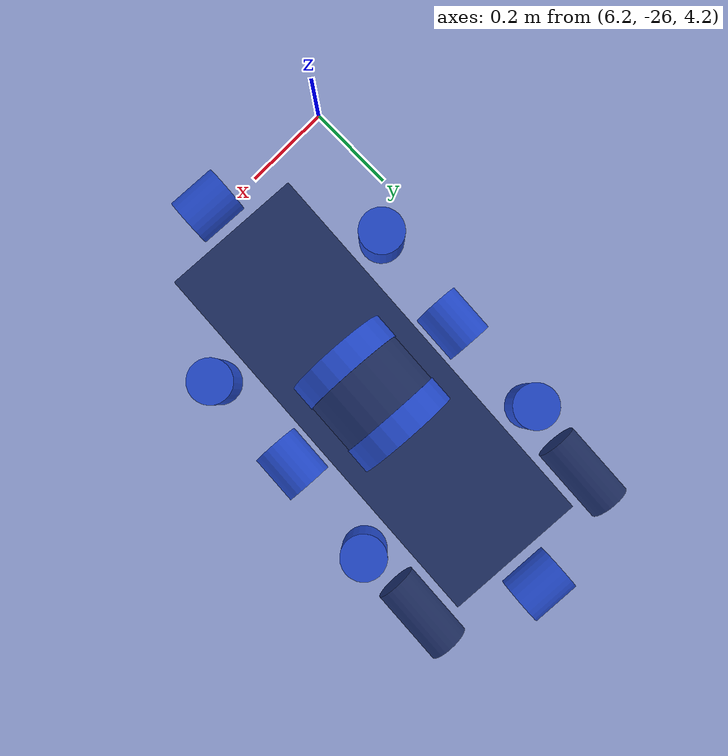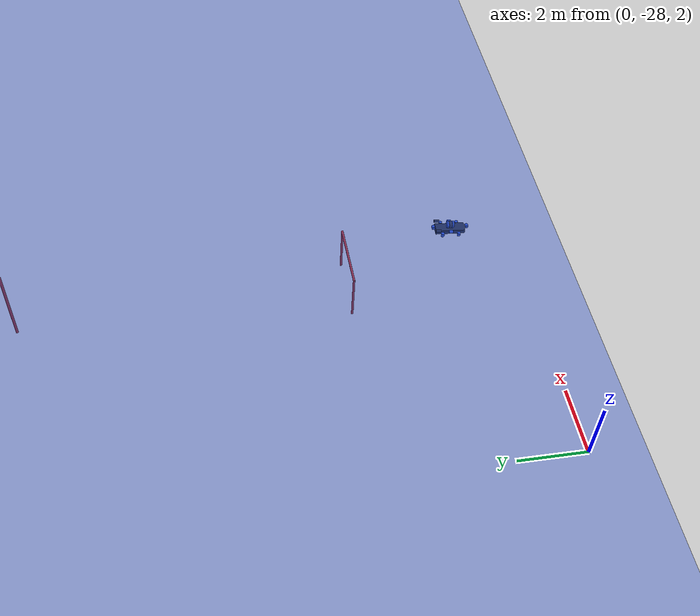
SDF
<sdf version="1.6">
 <world name="default">
  <scene>
   <ambient>0.25 0.3 1 1</ambient>
   <grid>0</grid>
   <background>0.25 0.3 1 1</background>
   <shadows>1</shadows>
  </scene>
  <light name="sun0" type="directional">
   <pose>8 -21 10 0 0.8 -2.8</pose>
   <diffuse>0.8 0.8 0.8 1</diffuse>
   <specular>0.2 0.2 0.2 1</specular>
   <attenuation>
    <range>1000</range>
    <constant>0.9</constant>
    <linear>0.01</linear>
    <quadratic>0.001</quadratic>
   </attenuation>
   <direction>-0.5 0.1 -0.9</direction>
  </light>
  <light name="sun1" type="directional">
   <pose>8 -20 10 0 0.8 0</pose>
   <diffuse>0.8 0.8 0.8 1</diffuse>
   <specular>0.2 0.2 0.2 1</specular>
   <attenuation>
    <range>1000</range>
    <constant>0.9</constant>
    <linear>0.01</linear>
    <quadratic>0.001</quadratic>
   </attenuation>
   <direction>-0.5 0.1 -0.9</direction>
  </light>
  <light name="sun2" type="directional">
   <pose>8 -19 10 0 -0 0</pose>
   <diffuse>0.8 0.8 0.8 1</diffuse>
   <specular>0.2 0.2 0.2 1</specular>
   <attenuation>
    <range>1000</range>
    <constant>0.9</constant>
    <linear>0.01</linear>
    <quadratic>0.001</quadratic>
   </attenuation>
   <direction>-0.5 0.1 -0.9</direction>
  </light>
  <light name="sun3" type="directional">
   <pose>8 -19 10 1.75 -0 0</pose>
   <diffuse>0.8 0.8 0.8 1</diffuse>
   <specular>0.2 0.2 0.2 1</specular>
   <attenuation>
    <range>1000</range>
    <constant>0.9</constant>
    <linear>0.01</linear>
    <quadratic>0.001</quadratic>
   </attenuation>
   <direction>-0.5 0.1 -0.9</direction>
  </light>
  <light name="sun4" type="directional">
   <pose>8 -19 10 1.75 -0 2.9</pose>
   <diffuse>0.8 0.8 0.8 1</diffuse>
   <specular>0.2 0.2 0.2 1</specular>
   <attenuation>
    <range>1000</range>
    <constant>0.9</constant>
    <linear>0.01</linear>
    <quadratic>0.001</quadratic>
   </attenuation>
   <direction>-0.5 0.1 -0.9</direction>
  </light>
  <model name="ceiling_plane">
   <static>1</static>
   <pose>1.72575 1.69101 4.78394 0 -0 0</pose>
   <link name="link">
    <visual name="visual">
     <cast_shadows>0</cast_shadows>
     <geometry><box><size>90 60 0.001</size></box></geometry>
     <material>
      <script><uri>file://media/materials/scripts/gazebo.material</uri><name>Gazebo/BlueTransparent</name></script>
     </material>
     <transparency>0.6</transparency>
    </visual>
   </link>
  </model>
  <model name="pinger_a">
   <static>1</static>
   <pose>37.88 -4.1 -4.9 0 -0 0</pose>
   <link name="link">
    <visual name="visual">
     <geometry><cylinder><radius>0.03</radius><length>0.15</length></cylinder></geometry>
     <material>
      <script><uri>file://media/materials/scripts/gazebo.material</uri><name>Gazebo/FlatBlack</name></script>
     </material>
    </visual>
   </link>
  </model>
  <model name="start gate_a">
   <pose>6.474 -22.48 2.17312 0 -0 1.575</pose>
   <static>1</static>
   <link name="board">
    <visual name="main"><geometry><mesh><uri>file://new_gate/gate1.dae</uri></mesh></geometry></visual>
    <collision name="main"><geometry><mesh><uri>file://new_gate/gate1.dae</uri></mesh></geometry></collision>
   </link>
  </model>
  <model name="pole">
   <pose>6.71645 -12.465 1.55 0 -0 1.575</pose>
   <static>1</static>
   <link name="board">
    <visual name="main"><geometry><mesh><uri>file://qualification_pole/Post1.dae</uri></mesh></geometry></visual>
    <collision name="main">
     <geometry><mesh><uri>file://qualification_pole/Post1.dae</uri></mesh></geometry>
    </collision>
   </link>
  </model>
  <model name="robosub">
   <pose>6.54663 -25.4801 4.40744 -0.000913 -0.017159 1.51179</pose>
   <joint name="hull_frame" type="fixed"><parent>frame</parent><child>hull</child></joint>
   <joint name="dive_front_left_frame" type="fixed"><parent>frame</parent><child>dive_front_left</child></joint>
   <joint name="dive_front_right_frame" type="fixed">
    <parent>frame</parent>
    <child>dive_front_right</child>
   </joint>
   <joint name="dive_back_left_frame" type="fixed"><parent>frame</parent><child>dive_back_left</child></joint>
   <joint name="dive_back_right_frame" type="fixed"><parent>frame</parent><child>dive_back_right</child></joint>
   <joint name="strafe_front_frame" type="fixed"><parent>frame</parent><child>strafe_front</child></joint>
   <joint name="strafe_back_frame" type="fixed"><parent>frame</parent><child>strafe_back</child></joint>
   <joint name="forward_left_frame" type="fixed"><parent>frame</parent><child>forward_left</child></joint>
   <joint name="forward_right_frame" type="fixed"><parent>frame</parent><child>forward_right</child></joint>
   <joint name="left_camera_frame" type="fixed"><parent>frame</parent><child>left_camera</child></joint>
   <joint name="right_camera_frame" type="fixed"><parent>frame</parent><child>right_camera</child></joint>
   <joint name="bottom_camera_frame" type="fixed"><parent>frame</parent><child>bottom_camera</child></joint>
   <joint name="hydrophone_h0_frame" type="fixed"><parent>frame</parent><child>hydrophone_h0</child></joint>
   <joint name="hydrophone_hx_frame" type="fixed"><parent>frame</parent><child>hydrophone_hx</child></joint>
   <joint name="hydrophone_hy_frame" type="fixed"><parent>frame</parent><child>hydrophone_hy</child></joint>
   <joint name="hydrophone_hz_frame" type="fixed"><parent>frame</parent><child>hydrophone_hz</child></joint>
   <link name="hull">
    <pose>0 0 0.082 1.5708 -0 1.5708</pose>
    <inertial>
     <mass>10</mass>
     <inertia><ixx>1</ixx><ixy>0</ixy><ixz>0</ixz><iyy>1</iyy><iyz>0</iyz><izz>1</izz></inertia>
    </inertial>
    <visual name="bulkhead_visual">
     <geometry><cylinder><radius>0.1</radius><length>0.13</length></cylinder></geometry>
     <material>
      <script><uri>file://media/materials/scripts/gazebo.material</uri><name>Gazebo/Black</name></script>
     </material>
    </visual>
    <visual name="front_ring_visual">
     <pose>0 0 0.075 0 -0 0</pose>
     <geometry><cylinder><radius>0.102</radius><length>0.05</length></cylinder></geometry>
     <material>
      <script><uri>file://media/materials/scripts/gazebo.material</uri><name>Gazebo/Blue</name></script>
     </material>
    </visual>
    <visual name="rear_ring_visual">
     <pose>0 0 -0.075 0 -0 0</pose>
     <geometry><cylinder><radius>0.102</radius><length>0.05</length></cylinder></geometry>
     <material>
      <script><uri>file://media/materials/scripts/gazebo.material</uri><name>Gazebo/Blue</name></script>
     </material>
    </visual>
    <visual name="front_tube_visual">
     <pose>0 0 0.235 0 -0 0</pose>
     <geometry><cylinder><radius>0.1</radius><length>0.32</length></cylinder></geometry>
     <material>
      <script><uri>file://media/materials/scripts/gazebo.material</uri><name>Gazebo/GreyTransparent</name></script>
      <diffuse>0.6 0.6 0.6 0.6</diffuse>
     </material>
    </visual>
    <visual name="rear_tube_visual">
     <pose>0 0 -0.235 0 -0 0</pose>
     <geometry><cylinder><radius>0.1</radius><length>0.32</length></cylinder></geometry>
     <material>
      <script><uri>file://media/materials/scripts/gazebo.material</uri><name>Gazebo/GreyTransparent</name></script>
      <diffuse>0.6 0.6 0.6 0.6</diffuse>
     </material>
    </visual>
    <collision name="hull_collision">
     <geometry><cylinder><radius>0.1</radius><length>0.77</length></cylinder></geometry>
    </collision>
    <velocity_decay><linear>0.002</linear><angular>0.002</angular></velocity_decay>
   </link>
   <link name="hydrophone_h0">
    <inertial>
     <mass>0.001</mass>
     <inertia><ixx>1</ixx><ixy>0</ixy><ixz>0</ixz><iyy>1</iyy><iyz>0</iyz><izz>1</izz></inertia>
    </inertial>
   </link>
   <link name="hydrophone_hx">
    <pose>0.015 0 0 0 -0 0</pose>
    <inertial>
     <mass>0.001</mass>
     <inertia><ixx>1</ixx><ixy>0</ixy><ixz>0</ixz><iyy>1</iyy><iyz>0</iyz><izz>1</izz></inertia>
    </inertial>
   </link>
   <link name="hydrophone_hy">
    <pose>0 0.015 0 0 -0 0</pose>
    <inertial>
     <mass>0.001</mass>
     <inertia><ixx>1</ixx><ixy>0</ixy><ixz>0</ixz><iyy>1</iyy><iyz>0</iyz><izz>1</izz></inertia>
    </inertial>
   </link>
   <link name="hydrophone_hz">
    <pose>0 0 0.015 0 -0 0</pose>
    <inertial>
     <mass>0.001</mass>
     <inertia><ixx>1</ixx><ixy>0</ixy><ixz>0</ixz><iyy>1</iyy><iyz>0</iyz><izz>1</izz></inertia>
    </inertial>
   </link>
   <link name="frame">
    <pose>0 0 -0.088 0 -0 0</pose>
    <inertial>
     <mass>16.5</mass>
     <inertia><ixx>1</ixx><ixy>0</ixy><ixz>0</ixz><iyy>1</iyy><iyz>0</iyz><izz>1</izz></inertia>
    </inertial>
    <visual name="frame_visual">
     <geometry><box><size>0.85 0.3 0.13</size></box></geometry>
     <material>
      <script><uri>file://media/materials/scripts/gazebo.material</uri><name>Gazebo/FlatBlack</name></script>
     </material>
    </visual>
    <collision name="frame_collision"><geometry><box><size>0.85 0.3 0.13</size></box></geometry></collision>
    <velocity_decay><linear>0.002</linear><angular>0.002</angular></velocity_decay>
   </link>
   <link name="dive_front_left">
    <pose>0.235 0.23 -0.1 3.14159 3e-06 3.14159</pose>
    <inertial>
     <mass>0.344</mass>
     <inertia><ixx>1</ixx><ixy>0</ixy><ixz>0</ixz><iyy>1</iyy><iyz>0</iyz><izz>1</izz></inertia>
    </inertial>
    <visual name="dive_front_left_visual">
     <geometry><cylinder><radius>0.0485</radius><length>0.101</length></cylinder></geometry>
     <material>
      <script><uri>file://media/materials/scripts/gazebo.material</uri><name>Gazebo/Blue</name></script>
     </material>
    </visual>
    <collision name="dive_front_left_collision">
     <geometry><cylinder><radius>0.0485</radius><length>0.101</length></cylinder></geometry>
    </collision>
   </link>
   <link name="dive_front_right">
    <pose>0.235 -0.23 -0.1 3.14159 3e-06 3.14159</pose>
    <inertial>
     <mass>0.344</mass>
     <inertia><ixx>1</ixx><ixy>0</ixy><ixz>0</ixz><iyy>1</iyy><iyz>0</iyz><izz>1</izz></inertia>
    </inertial>
    <visual name="dive_front_right_visual">
     <geometry><cylinder><radius>0.0485</radius><length>0.101</length></cylinder></geometry>
     <material>
      <script><uri>file://media/materials/scripts/gazebo.material</uri><name>Gazebo/Blue</name></script>
     </material>
    </visual>
    <collision name="dive_front_right_collision">
     <geometry><cylinder><radius>0.0485</radius><length>0.101</length></cylinder></geometry>
    </collision>
   </link>
   <link name="dive_back_left">
    <pose>-0.235 0.23 -0.1 3.14159 3e-06 3.14159</pose>
    <inertial>
     <mass>0.344</mass>
     <inertia><ixx>1</ixx><ixy>0</ixy><ixz>0</ixz><iyy>1</iyy><iyz>0</iyz><izz>1</izz></inertia>
    </inertial>
    <visual name="dive_back_left_visual">
     <geometry><cylinder><radius>0.0485</radius><length>0.101</length></cylinder></geometry>
     <material>
      <script><uri>file://media/materials/scripts/gazebo.material</uri><name>Gazebo/Blue</name></script>
     </material>
    </visual>
    <collision name="dive_back_left_collision">
     <geometry><cylinder><radius>0.0485</radius><length>0.101</length></cylinder></geometry>
    </collision>
   </link>
   <link name="dive_back_right">
    <pose>-0.235 -0.23 -0.1 3.14159 3e-06 3.14159</pose>
    <inertial>
     <mass>0.344</mass>
     <inertia><ixx>1</ixx><ixy>0</ixy><ixz>0</ixz><iyy>1</iyy><iyz>0</iyz><izz>1</izz></inertia>
    </inertial>
    <visual name="dive_back_right_visual">
     <geometry><cylinder><radius>0.0485</radius><length>0.101</length></cylinder></geometry>
     <material>
      <script><uri>file://media/materials/scripts/gazebo.material</uri><name>Gazebo/Blue</name></script>
     </material>
    </visual>
    <collision name="dive_back_right_collision">
     <geometry><cylinder><radius>0.0485</radius><length>0.101</length></cylinder></geometry>
    </collision>
   </link>
   <link name="strafe_front">
    <pose>0.49 0 -0.01 -1.5708 0 0</pose>
    <inertial>
     <mass>0.344</mass>
     <inertia><ixx>1</ixx><ixy>0</ixy><ixz>0</ixz><iyy>1</iyy><iyz>0</iyz><izz>1</izz></inertia>
    </inertial>
    <visual name="strafe_front_visual">
     <geometry><cylinder><radius>0.0485</radius><length>0.101</length></cylinder></geometry>
     <material>
      <script><uri>file://media/materials/scripts/gazebo.material</uri><name>Gazebo/Blue</name></script>
     </material>
    </visual>
    <collision name="strafe_front_collision">
     <geometry><cylinder><radius>0.0485</radius><length>0.101</length></cylinder></geometry>
    </collision>
   </link>
   <link name="strafe_back">
    <pose>-0.49 0 -0.01 -1.5708 0 0</pose>
    <inertial>
     <mass>0.344</mass>
     <inertia><ixx>1</ixx><ixy>0</ixy><ixz>0</ixz><iyy>1</iyy><iyz>0</iyz><izz>1</izz></inertia>
    </inertial>
    <visual name="strafe_back_visual">
     <geometry><cylinder><radius>0.0485</radius><length>0.101</length></cylinder></geometry>
     <material>
      <script><uri>file://media/materials/scripts/gazebo.material</uri><name>Gazebo/Blue</name></script>
     </material>
    </visual>
    <collision name="strafe_back_collision">
     <geometry><cylinder><radius>0.0485</radius><length>0.101</length></cylinder></geometry>
    </collision>
   </link>
   <link name="forward_left">
    <pose>0 0.2075 -0.01 3.14159 -1.57079 3.14159</pose>
    <inertial>
     <mass>0.344</mass>
     <inertia><ixx>1</ixx><ixy>0</ixy><ixz>0</ixz><iyy>1</iyy><iyz>0</iyz><izz>1</izz></inertia>
    </inertial>
    <visual name="forward_left_visual">
     <geometry><cylinder><radius>0.0485</radius><length>0.101</length></cylinder></geometry>
     <material>
      <script><uri>file://media/materials/scripts/gazebo.material</uri><name>Gazebo/Blue</name></script>
     </material>
    </visual>
    <collision name="forward_left_collision">
     <geometry><cylinder><radius>0.0485</radius><length>0.101</length></cylinder></geometry>
    </collision>
   </link>
   <link name="forward_right">
    <pose>0 -0.2075 -0.01 3.14159 -1.57079 3.14159</pose>
    <inertial>
     <mass>0.344</mass>
     <inertia><ixx>1</ixx><ixy>0</ixy><ixz>0</ixz><iyy>1</iyy><iyz>0</iyz><izz>1</izz></inertia>
    </inertial>
    <visual name="forward_right_visual">
     <geometry><cylinder><radius>0.0485</radius><length>0.101</length></cylinder></geometry>
     <material>
      <script><uri>file://media/materials/scripts/gazebo.material</uri><name>Gazebo/Blue</name></script>
     </material>
    </visual>
    <collision name="forward_right_collision">
     <geometry><cylinder><radius>0.0485</radius><length>0.101</length></cylinder></geometry>
    </collision>
   </link>
   <link name="left_camera">
    <pose>0.37 0.2 0.04 3.14159 1.57079 3.14159</pose>
    <inertial>
     <mass>0.73</mass>
     <inertia><ixx>1</ixx><ixy>0</ixy><ixz>0</ixz><iyy>1</iyy><iyz>0</iyz><izz>1</izz></inertia>
    </inertial>
    <visual name="left_camera_visual">
     <geometry><cylinder><radius>0.0405</radius><length>0.15</length></cylinder></geometry>
     <material>
      <script><uri>file://media/materials/scripts/gazebo.material</uri><name>Gazebo/Black</name></script>
     </material>
    </visual>
    <collision name="left_camera_collision">
     <geometry><cylinder><radius>0.0405</radius><length>0.15</length></cylinder></geometry>
    </collision>
    <sensor name="left" type="wideanglecamera">
     <pose>0 0 0.14 3.14159 -1.57079 3.14159</pose>
     <camera name="__default__">
      <horizontal_fov>3.1415</horizontal_fov>
      <image><width>1384</width><height>1032</height></image>
      <clip><near>0.001</near><far>100</far></clip>
      <lens>
       <type>custom</type>
       <custom_function><c1>685.4</c1><c2>525.2</c2><f>307.533</f><fun>tan</fun></custom_function>
       <scale_to_hfov>1</scale_to_hfov>
       <cutoff_angle>1.57075</cutoff_angle>
       <env_texture_size>512</env_texture_size>
      </lens>
      <distortion>
       <k1>-0.164923</k1>
       <k2>0.0161872</k2>
       <k3>-0.000389519</k3>
       <p1>0</p1>
       <p2>0</p2>
       <center>0 0</center>
      </distortion>
     </camera>
     <plugin name="left_camera_controller" filename="libgazebo_ros_camera.so">
      <cameraName>left</cameraName>
      <imageTopicName>/camera/left/image_raw</imageTopicName>
     </plugin>
     <always_on>1</always_on>
     <update_rate>5</update_rate>
    </sensor>
   </link>
   <link name="right_camera">
    <pose>0.37 -0.2 0.04 3.14159 1.57079 3.14159</pose>
    <inertial>
     <mass>0.73</mass>
     <inertia><ixx>1</ixx><ixy>0</ixy><ixz>0</ixz><iyy>1</iyy><iyz>0</iyz><izz>1</izz></inertia>
    </inertial>
    <visual name="right_camera_visual">
     <geometry><cylinder><radius>0.0405</radius><length>0.15</length></cylinder></geometry>
     <material>
      <script><uri>file://media/materials/scripts/gazebo.material</uri><name>Gazebo/Black</name></script>
     </material>
    </visual>
    <collision name="right_camera_collision">
     <geometry><cylinder><radius>0.0405</radius><length>0.15</length></cylinder></geometry>
    </collision>
    <sensor name="right" type="wideanglecamera">
     <pose>0 0 0.14 3.14159 -1.57079 3.14159</pose>
     <camera name="__default__">
      <horizontal_fov>3.1415</horizontal_fov>
      <image><width>1384</width><height>1032</height></image>
      <clip><near>0.1</near><far>100</far></clip>
      <lens>
       <type>custom</type>
       <custom_function><c1>667.1</c1><c2>536.7</c2><f>317.863</f><fun>tan</fun></custom_function>
       <scale_to_hfov>1</scale_to_hfov>
       <cutoff_angle>1.57075</cutoff_angle>
       <env_texture_size>512</env_texture_size>
      </lens>
      <distortion>
       <k1>-0.164923</k1>
       <k2>0.0161872</k2>
       <k3>-0.000389519</k3>
       <p1>0</p1>
       <p2>0</p2>
       <center>0 0</center>
      </distortion>
     </camera>
     <plugin name="right_camera_controller" filename="libgazebo_ros_camera.so">
      <cameraName>right</cameraName>
      <imageTopicName>/camera/right/image_raw</imageTopicName>
     </plugin>
     <always_on>1</always_on>
     <update_rate>5</update_rate>
    </sensor>
   </link>
   <link name="bottom_camera">
    <pose>0 0 -0.1 3.14159 -0 3.14159</pose>
    <inertial>
     <mass>0.73</mass>
     <inertia><ixx>1</ixx><ixy>0</ixy><ixz>0</ixz><iyy>1</iyy><iyz>0</iyz><izz>1</izz></inertia>
    </inertial>
    <visual name="bottom_camera_visual">
     <geometry><cylinder><radius>0.0405</radius><length>0.15</length></cylinder></geometry>
     <material>
      <script><uri>file://media/materials/scripts/gazebo.material</uri><name>Gazebo/Black</name></script>
     </material>
    </visual>
    <collision name="bottom_camera_collision">
     <geometry><cylinder><radius>0.0405</radius><length>0.15</length></cylinder></geometry>
    </collision>
    <sensor name="bottom" type="wideanglecamera">
     <pose>0 0 0.14 3.14159 -1.57079 3.14159</pose>
     <camera name="__default__">
      <horizontal_fov>3.1415</horizontal_fov>
      <image><width>1384</width><height>1032</height></image>
      <clip><near>0.1</near><far>100</far></clip>
      <lens>
       <type>custom</type>
       <custom_function><c1>691.5</c1><c2>515.5</c2><f>341.433</f><fun>tan</fun></custom_function>
       <scale_to_hfov>1</scale_to_hfov>
       <cutoff_angle>1.57075</cutoff_angle>
       <env_texture_size>512</env_texture_size>
      </lens>
      <distortion>
       <k1>-0.164923</k1>
       <k2>0.0161872</k2>
       <k3>-0.000389519</k3>
       <p1>0</p1>
       <p2>0</p2>
       <center>0 0</center>
      </distortion>
     </camera>
     <plugin name="bottom_camera_controller" filename="libgazebo_ros_camera.so">
      <cameraName>bottom</cameraName>
      <imageTopicName>/camera/bottom/image_raw</imageTopicName>
     </plugin>
     <always_on>1</always_on>
     <update_rate>5</update_rate>
    </sensor>
   </link>
   <allow_auto_disable>0</allow_auto_disable>
   <plugin name="thruster" filename="libthruster.so"/>
   <plugin name="buoyancy_improved" filename="libbuoyancy_improved.so">
    <fluid_density>1000</fluid_density>
    <link name="frame"><volume>0.0026</volume></link>
    <link name="dive_back_right"><volume>0.000334</volume></link>
    <link name="dive_back_left"><volume>0.000334</volume></link>
    <link name="dive_front_right"><volume>0.000334</volume></link>
    <link name="dive_front_left"><volume>0.000334</volume></link>
    <link name="strafe_front"><volume>0.000334</volume></link>
    <link name="strafe_back"><volume>0.000334</volume></link>
    <link name="forward_right"><volume>0.000334</volume></link>
    <link name="forward_left"><volume>0.000334</volume></link>
   </plugin>
   <plugin name="imu" filename="libgazebo_ros_imu.so">
    <alwaysOn>true</alwaysOn>
    <bodyName>frame</bodyName>
    <topicName>gazebo/rs_imu</topicName>
    <serviceName>gazebo/rs_imu_service</serviceName>
    <gaussianNoise>0.0</gaussianNoise>
    <updateRate>20.0</updateRate>
   </plugin>
   <plugin name="marker_dropper" filename="libmarkerdrop.so"/>
  </model>
  <gravity>0 0 -9.8</gravity>
  <magnetic_field>6e-06 2.3e-05 -4.2e-05</magnetic_field>
  <atmosphere type="adiabatic"/>
  <physics name="default_physics" default="0" type="ode">
   <max_step_size>0.001</max_step_size>
   <real_time_factor>1</real_time_factor>
   <real_time_update_rate>1000</real_time_update_rate>
  </physics>
  <spherical_coordinates>
   <surface_model>EARTH_WGS84</surface_model>
   <latitude_deg>0</latitude_deg>
   <longitude_deg>0</longitude_deg>
   <elevation>0</elevation>
   <heading_deg>0</heading_deg>
  </spherical_coordinates>
  <model name="marker">
   <pose>-2.18819 0.417063 -19161.4 -0.000122 -0.000369 -8e-05</pose>
   <link name="marker">
    <inertial>
     <mass>0.05</mass>
     <inertia><ixx>1</ixx><ixy>0</ixy><ixz>0</ixz><iyy>1</iyy><iyz>0</iyz><izz>1</izz></inertia>
    </inertial>
    <visual name="marker_vis">
     <geometry><sphere><radius>0.02</radius></sphere></geometry>
     <material>
      <script><uri>file://media/materials/scripts/gazebo.material</uri><name>Gazebo/Grey</name></script>
     </material>
    </visual>
    <collision name="marker_collision"><geometry><sphere><radius>0.02</radius></sphere></geometry></collision>
   </link>
   <plugin name="buoyancy_improved" filename="libbuoyancy_improved.so">
    <fluid_density>1000</fluid_density>
    <link name="marker"><volume>0.00003351</volume></link>
   </plugin>
  </model>
  <model name="marker_0">
   <pose>-1.0822 0.204385 -19161.4 -0.000123 -0.00037 -0.000163</pose>
   <link name="marker">
    <inertial>
     <mass>0.05</mass>
     <inertia><ixx>1</ixx><ixy>0</ixy><ixz>0</ixz><iyy>1</iyy><iyz>0</iyz><izz>1</izz></inertia>
    </inertial>
    <visual name="marker_vis">
     <geometry><sphere><radius>0.02</radius></sphere></geometry>
     <material>
      <script><uri>file://media/materials/scripts/gazebo.material</uri><name>Gazebo/Grey</name></script>
     </material>
    </visual>
    <collision name="marker_collision"><geometry><sphere><radius>0.02</radius></sphere></geometry></collision>
   </link>
   <plugin name="buoyancy_improved" filename="libbuoyancy_improved.so">
    <fluid_density>1000</fluid_density>
    <link name="marker"><volume>0.00003351</volume></link>
   </plugin>
  </model>
 </world>
</sdf>
